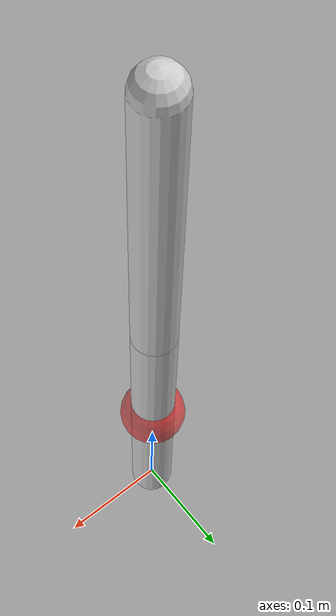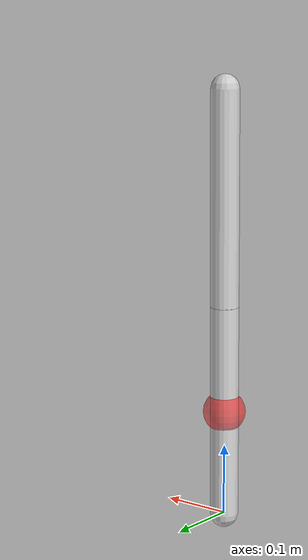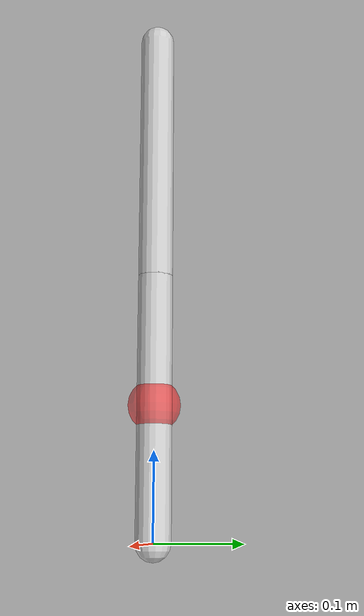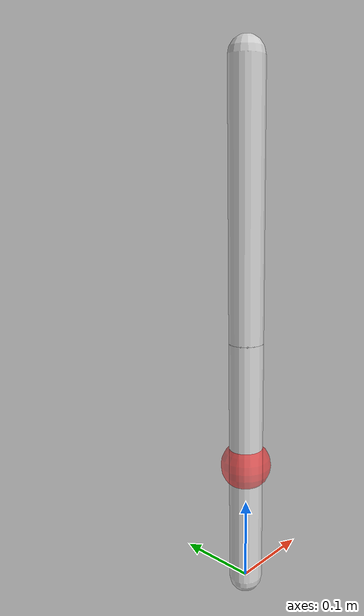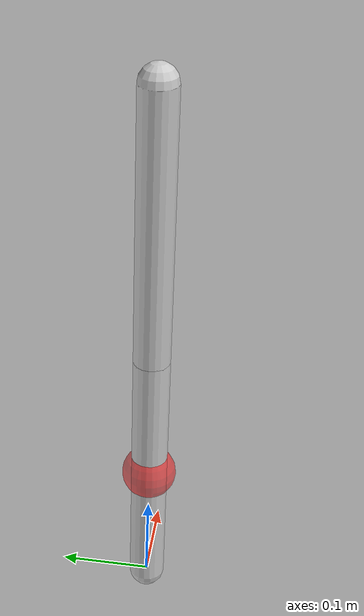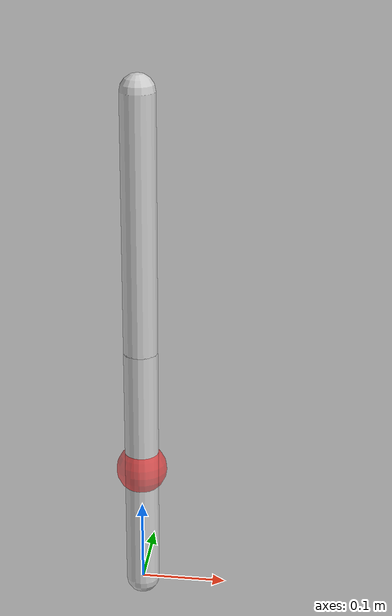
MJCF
<mujoco model="hill_muscle_test">
    <compiler angle="degree" coordinate="local"/>
    <option gravity="0 0 -9.81"/>

    <worldbody>
        <body name="upper_arm" pos="0 0 0">
            <geom type="capsule" fromto="0 0 0 0 0 0.3" size="0.02" rgba="0.8 0.8 0.8 1"/>
            <joint name="elbow" type="hinge" axis="0 1 0" pos="0 0 0.3" range="-150 0"/>

            <!-- Muscle visualization points -->
            <site name="bicep_origin" pos="0 0 0.1" size="0.005" rgba="1 0 0 1"/>
            <site name="bicep_insertion" pos="0 0 0.2" size="0.005" rgba="1 0 0 1"/>
            <site name="tricep_origin" pos="0 0 0.1" size="0.005" rgba="0 0 1 1"/>
            <site name="tricep_insertion" pos="0 0 0.2" size="0.005" rgba="0 0 1 1"/>

            <!-- Wrapping objects for muscle paths -->
            <geom name="bicep_wrap" type="sphere" pos="0 0 0.15" size="0.03" rgba="1 0 0 0.5"/>
            <geom name="tricep_wrap" type="sphere" pos="0 0 0.15" size="0.03" rgba="0 0 1 0.5"/>

            <!-- Sites for muscle paths -->
            <site name="bicep_wrap_site" pos="0 0 0.15" size="0.003"/>
            <site name="tricep_wrap_site" pos="0 0 0.15" size="0.003"/>

            <body name="forearm" pos="0 0 0.3">
                <geom type="capsule" fromto="0 0 0 0 0 0.3" size="0.02" rgba="0.8 0.8 0.8 1"/>
            </body>
        </body>
    </worldbody>

    <tendon>
        <!-- Bicep muscle -->
        <spatial name="bicep" width="0.01" rgba="1 0 0 0.8">
            <site site="bicep_origin"/>
            <site site="bicep_wrap_site"/>
            <site site="bicep_insertion"/>
        </spatial>
        <!-- Tricep muscle -->
        <spatial name="tricep" width="0.01" rgba="0 0 1 0.8">
            <site site="tricep_origin"/>
            <site site="tricep_wrap_site"/>
            <site site="tricep_insertion"/>
        </spatial>
    </tendon>

    <actuator>
        <!-- Hill-type muscle actuators -->
        <motor name="bicep_motor" joint="elbow" gear="1" ctrlrange="0 1"/>
        <motor name="tricep_motor" joint="elbow" gear="-1" ctrlrange="0 1"/>
    </actuator>

    <visual>
        <global offwidth="1200" offheight="900"/>
        <quality shadowsize="2048"/>
    </visual>
</mujoco>
